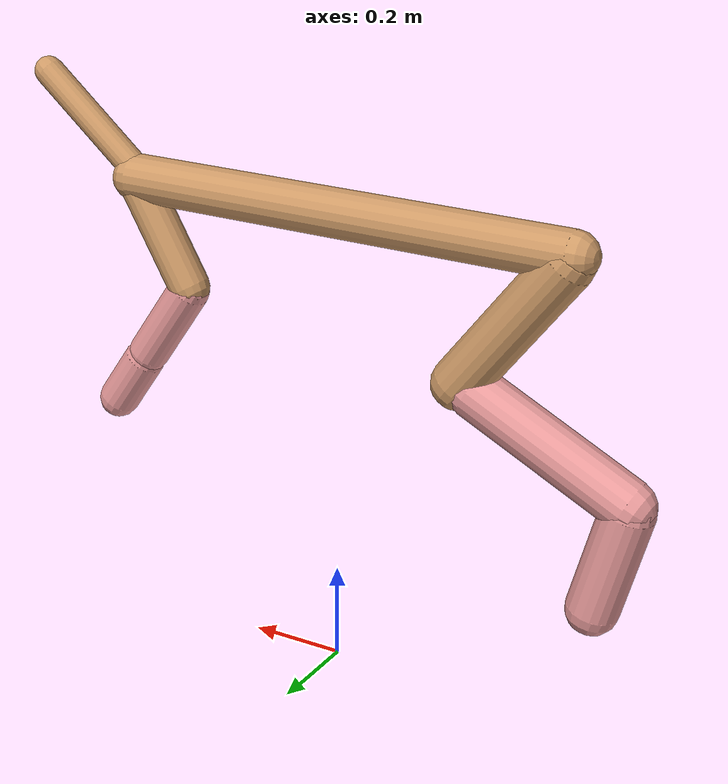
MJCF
<mujoco model="cheetah">
  <compiler angle="radian" coordinate="local" inertiafromgeom="true" settotalmass="14" />
  <default>
    <joint armature=".1" damping=".01" limited="true" solimplimit="0 .8 .03" solreflimit=".02 1" stiffness="8" />
    <geom conaffinity="0" condim="3" contype="1" friction="0.8 .1 .1" rgba="0.8 0.6 .4 1" solimp="0.0 0.8 0.01" solref="0.02 1" />
    <motor ctrllimited="true" ctrlrange="-1 1" />
  </default>
  <size nstack="300000" nuser_geom="1" />
  <option gravity="0 0 -9.81" timestep="0.01" />
  <worldbody>
    <body name="torso" pos="0.0 0.0 0.97513737087632">
      <joint armature="0" axis="1 0 0" damping="0" limited="false" name="ignorex" pos="0 0 0" stiffness="0" type="slide" />
      <joint armature="0" axis="0 0 1" damping="0" limited="false" name="ignorez" pos="0 0 0" stiffness="0" type="slide" />
      <joint armature="0" axis="0 1 0" damping="0" limited="false" name="ignorey" pos="0 0 0" stiffness="0" type="hinge" />
      <geom fromto="-0.5 0.0 0.0 0.48227441126413134 0.0 0.0" name="torso" size="0.04942476060644865" type="capsule" />
      <geom axisangle="0 1 0 .87" name="head" pos="0.5822744112641313 0.0 0.1" size="0.030550705535260965 0.15" type="capsule" />

      <body name="bthigh" pos="-.5 0 0">
        <joint axis="0 1 0" damping="6" name="bthigh" pos="0 0 0" range="-.52 1.05" stiffness="240" type="hinge" />
        <geom axisangle="0 1 0 -3.8" name="bthigh" pos="0.12061386549288293 0.0 -0.1567980251407478" size="0.054353119943214304 0.17880925320090374" type="capsule" />
        <body name="bshin" pos="0.20122773098576585 0.0 -0.3035960502814956">
          <joint axis="0 1 0" damping="4.5" name="bshin" pos="0 0 0" range="-.785 .785" stiffness="180" type="hinge" />
          <geom axisangle="0 1 0 -2.03" name="bshin" pos="-0.17128267107271303 0.0 -0.08564133553635651" rgba="0.9 0.6 0.6 1" size="0.054353119943214304 0.1849750895181763" type="capsule" />
          <body name="bfoot" pos="-0.34256534214542605 0.0 -0.17128267107271303">
            <joint axis="0 1 0" damping="3" name="bfoot" pos="0 0 0" range="-.4 .785" stiffness="120" type="hinge" />
            <geom axisangle="0 1 0 -.27" name="bfoot" pos="0.036476023472375635 0.0 -0.11793914256068123" rgba="0.9 0.6 0.6 1" size="0.054353119943214304 0.1159177227647238" type="capsule" />
            <inertial mass="10" />
          </body>
        </body>
      </body>
      <body name="fthigh" pos="0.4822744112641313 0.0 0.0">
        <joint axis="0 1 0" damping="4.5" name="fthigh" pos="0 0 0" range="-1.5 0.8" stiffness="180" type="hinge" />
        <geom axisangle="0 1 0 .52" name="fthigh" pos="-0.0644830493289521 0.0 -0.11054237027820359" size="0.0429177593384079 0.12205086740141564" type="capsule" />
        <body name="fshin" pos="-0.1289660986579042 0.0 -0.22108474055640717">
          <joint axis="0 1 0" damping="3" name="fshin" pos="0 0 0" range="-1.2 1.1" stiffness="120" type="hinge" />
          <geom axisangle="0 1 0 -.6" name="fshin" pos="0.059890789073822476 0.0 -0.08292570794836958" rgba="0.9 0.6 0.6 1" size="0.0429177593384079 0.09727362364323351" type="capsule" />
          <body name="ffoot" pos="0.11978157814764495 0.0 -0.16585141589673916">
            <joint axis="0 1 0" damping="1.5" name="ffoot" pos="0 0 0" range="-3.1 -0.3" stiffness="60" type="hinge" />
            <geom axisangle="0 1 0 -.6" name="ffoot" pos="0.04188377548895653 0.0 -0.06515253964948794" rgba="0.9 0.6 0.6 1" size="0.0429177593384079 0.06423729863232402" type="capsule" />
            <inertial mass="10" />
          </body>
        </body>
      </body>
    </body>
  </worldbody>
  <actuator>
    <motor gear="120" joint="bthigh" name="bthigh" />
    <motor gear="90" joint="bshin" name="bshin" />
    <motor gear="60" joint="bfoot" name="bfoot" />
    <motor gear="120" joint="fthigh" name="fthigh" />
    <motor gear="60" joint="fshin" name="fshin" />
    <motor gear="30" joint="ffoot" name="ffoot" />
  </actuator>
</mujoco>
